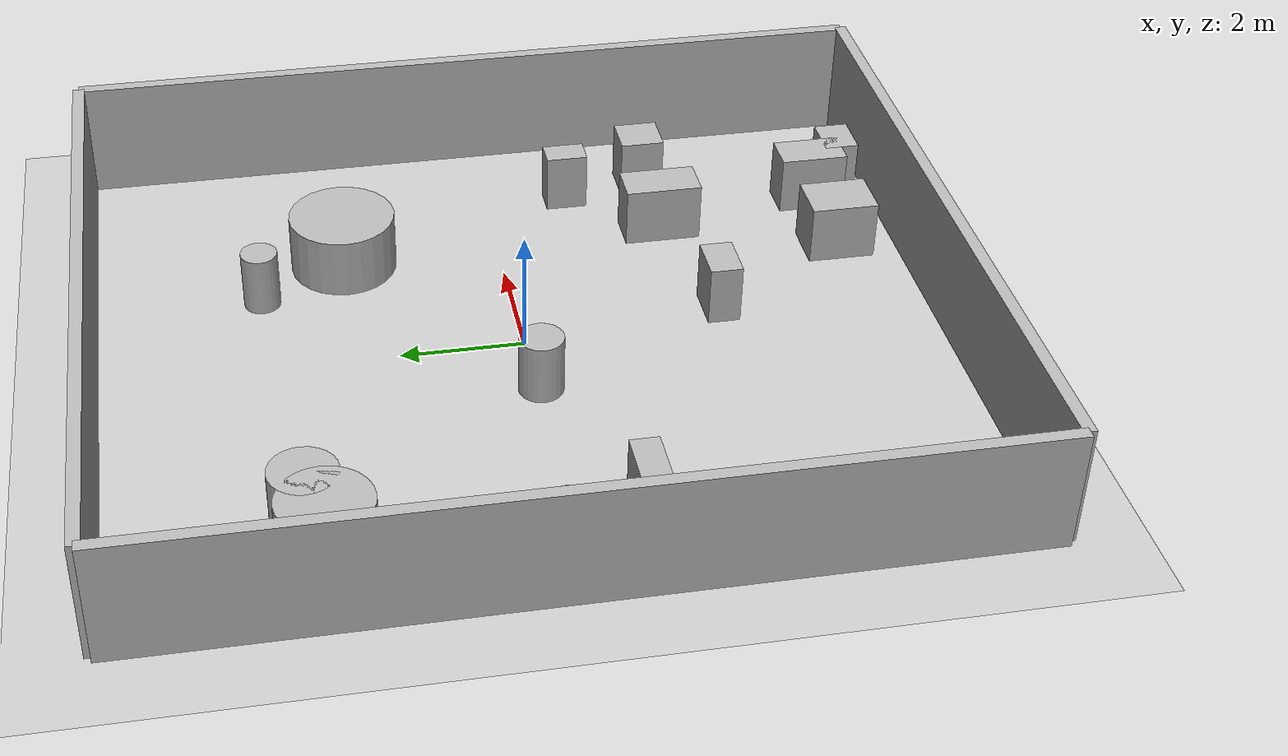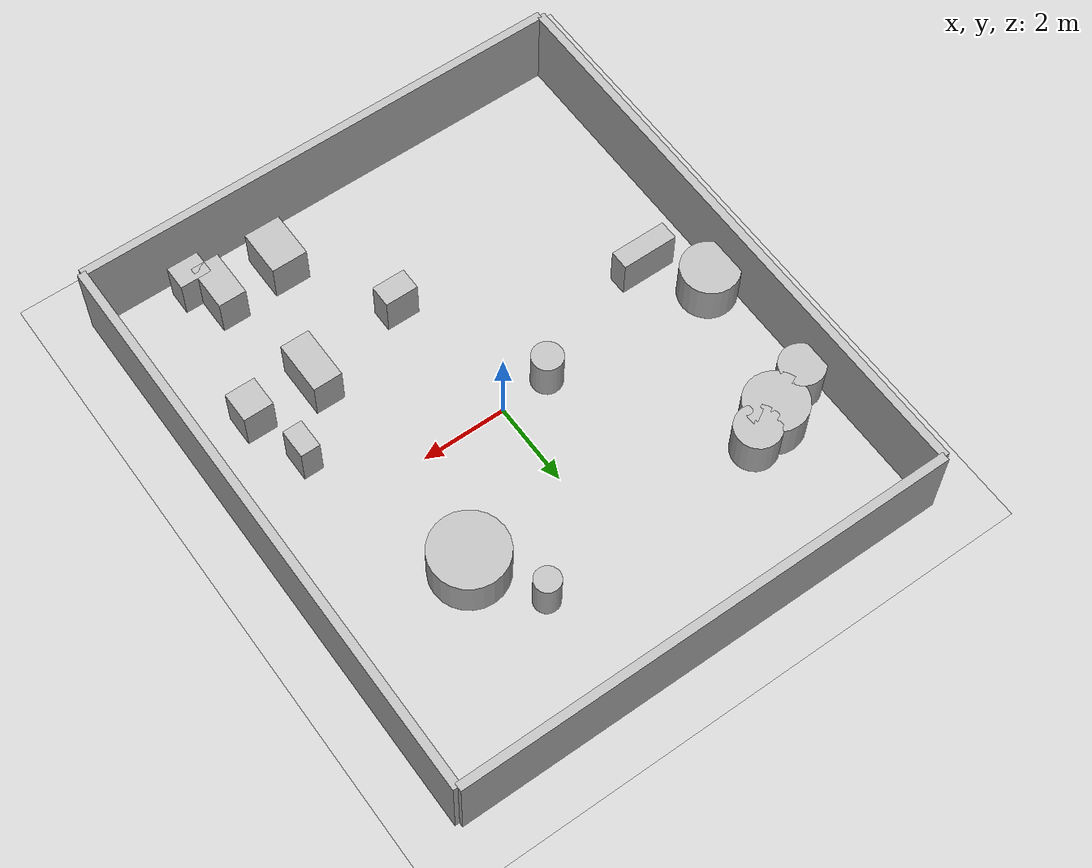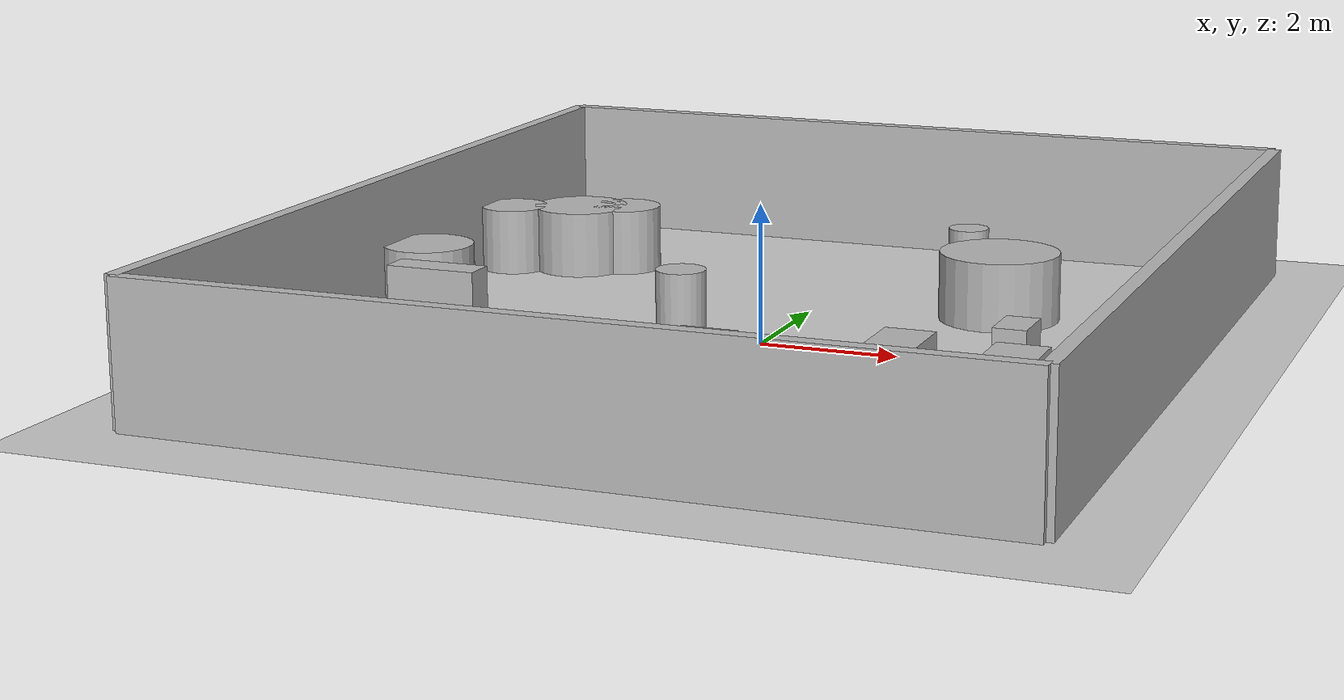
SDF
<?xml version="1.0"?>
<sdf version="1.6">
  <world name="env_24">

    <include><uri>model://ground_plane</uri></include>
    <include><uri>model://sun</uri></include>

    <!-- WALLS -->
    <model name="wall_north"><static>true</static><pose>0 6.8373857051261995 1 0 0 0</pose>
      <link name="link"><collision name="collision">
        <geometry><box><size>11.786684202789267 0.2 2</size></box></geometry>
      </collision><visual name="visual">
        <geometry><box><size>11.786684202789267 0.2 2</size></box></geometry>
      </visual></link>
    </model>

    <model name="wall_south"><static>true</static><pose>0 -6.8373857051261995 1 0 0 0</pose>
      <link name="link"><collision name="collision">
        <geometry><box><size>11.786684202789267 0.2 2</size></box></geometry>
      </collision><visual name="visual">
        <geometry><box><size>11.786684202789267 0.2 2</size></box></geometry>
      </visual></link>
    </model>

    <model name="wall_east"><static>true</static><pose>5.893342101394634 0 1 0 0 1.57</pose>
      <link name="link"><collision name="collision">
        <geometry><box><size>13.674771410252399 0.2 2</size></box></geometry>
      </collision><visual name="visual">
        <geometry><box><size>13.674771410252399 0.2 2</size></box></geometry>
      </visual></link>
    </model>

    <model name="wall_west"><static>true</static><pose>-5.893342101394634 0 1 0 0 1.57</pose>
      <link name="link"><collision name="collision">
        <geometry><box><size>13.674771410252399 0.2 2</size></box></geometry>
      </collision><visual name="visual">
        <geometry><box><size>13.674771410252399 0.2 2</size></box></geometry>
      </visual></link>
    </model>

    <!-- SENSOR -->

    <model name="lidar_sensor">
      <static>true</static>
      <pose>-2.3580773344873487 3.412360192773515 0.4 0 0 0</pose>
      <link name="link">
        <sensor name="lidar" type="ray">
          <pose>0 0 0 0 0 0</pose>
          <visualize>true</visualize>
          <always_on>true</always_on>
          <update_rate>10</update_rate>
          <ray>
            <scan><horizontal>
              <samples>120</samples>
              <resolution>1</resolution>
              <min_angle>-3.14159</min_angle>
              <max_angle>3.14159</max_angle>
            </horizontal></scan>
            <range><min>0.15</min><max>20.0</max><resolution>0.01</resolution></range>
          </ray>
          <plugin name="lidar_plugin" filename="liblidar_plugin.so"/>
        </sensor>
      </link>
    </model>

    <!-- OBSTACLES -->

    <model name="obstacle_0">
      <static>true</static>
      <pose>0.45788821097413734 -3.3101894026208494 0.5 0 0 0</pose>
      <link name="link">
        <collision name="collision">
          <geometry><box><size>0.79 0.53 1.0</size></box></geometry>
        </collision>
        <visual name="visual">
          <geometry><box><size>0.79 0.53 1.0</size></box></geometry>
        </visual>
      </link>
    </model>

    <model name="obstacle_1">
      <static>true</static>
      <pose>2.8837917475976003 -2.8444869476032992 0.5 0 0 0</pose>
      <link name="link">
        <collision name="collision">
          <geometry><box><size>0.69 1.28 1.0</size></box></geometry>
        </collision>
        <visual name="visual">
          <geometry><box><size>0.69 1.28 1.0</size></box></geometry>
        </visual>
      </link>
    </model>

    <model name="obstacle_2">
      <static>true</static>
      <pose>-4.388738380310492 3.5459815169186877 0.5 0 0 0</pose>
      <link name="link">
        <collision name="collision">
          <geometry><cylinder><radius>0.73</radius><length>1.0</length></cylinder></geometry>
        </collision>
        <visual name="visual">
          <geometry><cylinder><radius>0.73</radius><length>1.0</length></cylinder></geometry>
        </visual>
      </link>
    </model>

    <model name="obstacle_3">
      <static>true</static>
      <pose>3.789304008928376 -6.225300478245412 0.5 0 0 0</pose>
      <link name="link">
        <collision name="collision">
          <geometry><box><size>0.74 0.58 1.0</size></box></geometry>
        </collision>
        <visual name="visual">
          <geometry><box><size>0.74 0.58 1.0</size></box></geometry>
        </visual>
      </link>
    </model>

    <model name="obstacle_4">
      <static>true</static>
      <pose>1.9249651543905228 -5.720035279253771 0.5 0 0 0</pose>
      <link name="link">
        <collision name="collision">
          <geometry><box><size>0.86 1.12 1.0</size></box></geometry>
        </collision>
        <visual name="visual">
          <geometry><box><size>0.86 1.12 1.0</size></box></geometry>
        </visual>
      </link>
    </model>

    <model name="obstacle_5">
      <static>true</static>
      <pose>4.434346154475293 -2.8007977697343263 0.5 0 0 0</pose>
      <link name="link">
        <collision name="collision">
          <geometry><box><size>0.71 0.74 1.0</size></box></geometry>
        </collision>
        <visual name="visual">
          <geometry><box><size>0.71 0.74 1.0</size></box></geometry>
        </visual>
      </link>
    </model>

    <model name="obstacle_6">
      <static>true</static>
      <pose>-1.1859401078385412 -0.06626548160278922 0.5 0 0 0</pose>
      <link name="link">
        <collision name="collision">
          <geometry><cylinder><radius>0.36</radius><length>1.0</length></cylinder></geometry>
        </collision>
        <visual name="visual">
          <geometry><cylinder><radius>0.36</radius><length>1.0</length></cylinder></geometry>
        </visual>
      </link>
    </model>

    <model name="obstacle_7">
      <static>true</static>
      <pose>-5.3117011705005925 0.17662963448255908 0.5 0 0 0</pose>
      <link name="link">
        <collision name="collision">
          <geometry><cylinder><radius>0.67</radius><length>1.0</length></cylinder></geometry>
        </collision>
        <visual name="visual">
          <geometry><cylinder><radius>0.67</radius><length>1.0</length></cylinder></geometry>
        </visual>
      </link>
    </model>

    <model name="obstacle_8">
      <static>true</static>
      <pose>4.058259347128088 -1.403513446152167 0.5 0 0 0</pose>
      <link name="link">
        <collision name="collision">
          <geometry><box><size>0.46 0.7 1.0</size></box></geometry>
        </collision>
        <visual name="visual">
          <geometry><box><size>0.46 0.7 1.0</size></box></geometry>
        </visual>
      </link>
    </model>

    <model name="obstacle_9">
      <static>true</static>
      <pose>-5.381393427877317 3.1759029996730357 0.5 0 0 0</pose>
      <link name="link">
        <collision name="collision">
          <geometry><cylinder><radius>0.52</radius><length>1.0</length></cylinder></geometry>
        </collision>
        <visual name="visual">
          <geometry><cylinder><radius>0.52</radius><length>1.0</length></cylinder></geometry>
        </visual>
      </link>
    </model>

    <model name="obstacle_10">
      <static>true</static>
      <pose>3.4151248572830664 -5.645724845915129 0.5 0 0 0</pose>
      <link name="link">
        <collision name="collision">
          <geometry><box><size>0.66 1.14 1.0</size></box></geometry>
        </collision>
        <visual name="visual">
          <geometry><box><size>0.66 1.14 1.0</size></box></geometry>
        </visual>
      </link>
    </model>

    <model name="obstacle_11">
      <static>true</static>
      <pose>2.706554162769436 2.629760148422574 0.5 0 0 0</pose>
      <link name="link">
        <collision name="collision">
          <geometry><cylinder><radius>0.88</radius><length>1.0</length></cylinder></geometry>
        </collision>
        <visual name="visual">
          <geometry><cylinder><radius>0.88</radius><length>1.0</length></cylinder></geometry>
        </visual>
      </link>
    </model>

    <model name="obstacle_12">
      <static>true</static>
      <pose>1.8194755636394735 4.0617418588143925 0.5 0 0 0</pose>
      <link name="link">
        <collision name="collision">
          <geometry><cylinder><radius>0.3</radius><length>1.0</length></cylinder></geometry>
        </collision>
        <visual name="visual">
          <geometry><cylinder><radius>0.3</radius><length>1.0</length></cylinder></geometry>
        </visual>
      </link>
    </model>

    <model name="obstacle_13">
      <static>true</static>
      <pose>-4.499549360741465 -1.0969056445377365 0.5 0 0 0</pose>
      <link name="link">
        <collision name="collision">
          <geometry><box><size>1.35 0.46 1.0</size></box></geometry>
        </collision>
        <visual name="visual">
          <geometry><box><size>1.35 0.46 1.0</size></box></geometry>
        </visual>
      </link>
    </model>

    <model name="obstacle_14">
      <static>true</static>
      <pose>-3.717709055037748 3.7933858250169754 0.5 0 0 0</pose>
      <link name="link">
        <collision name="collision">
          <geometry><cylinder><radius>0.53</radius><length>1.0</length></cylinder></geometry>
        </collision>
        <visual name="visual">
          <geometry><cylinder><radius>0.53</radius><length>1.0</length></cylinder></geometry>
        </visual>
      </link>
    </model>

  </world>
</sdf>
